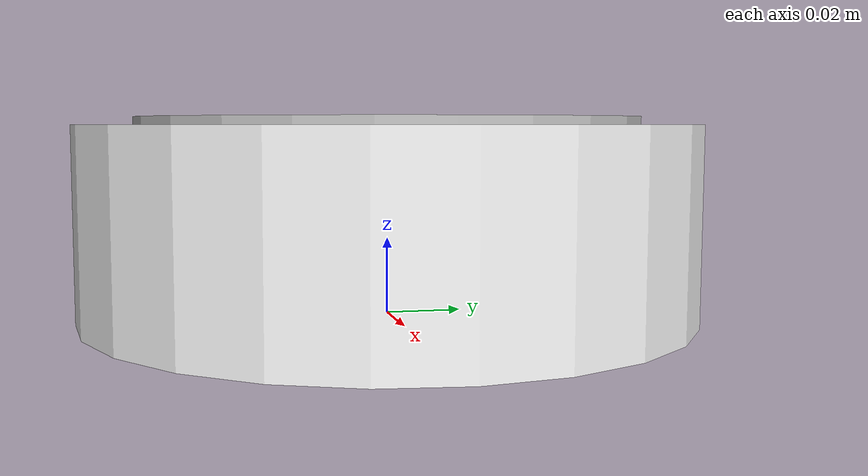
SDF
<?xml version="1.0" ?>
<!-- Author: Frank Loewenich -->
<sdf version="1.9">
  <!-- White plastic bowl, 16 cm diameter, 5 cm tall, with a slightly darker inner disc so the rim reads at 11 m. -->
  <model name="bowl">
    <static>true</static>
    <link name="link">
      <visual name="body">
        <pose>0 0 0.025 0 0 0</pose>
        <geometry><cylinder><radius>0.08</radius><length>0.05</length></cylinder></geometry>
        <material>
          <ambient>0.85 0.85 0.85 1</ambient>
          <diffuse>0.95 0.95 0.95 1</diffuse>
          <specular>0.4 0.4 0.4 1</specular>
        </material>
      </visual>
      <visual name="inner">
        <pose>0 0 0.051 0 0 0</pose>
        <geometry><cylinder><radius>0.065</radius><length>0.002</length></cylinder></geometry>
        <material>
          <ambient>0.6 0.6 0.6 1</ambient>
          <diffuse>0.75 0.75 0.75 1</diffuse>
        </material>
      </visual>
      <collision name="collision">
        <pose>0 0 0.025 0 0 0</pose>
        <geometry><cylinder><radius>0.08</radius><length>0.05</length></cylinder></geometry>
      </collision>
    </link>
  </model>
</sdf>
